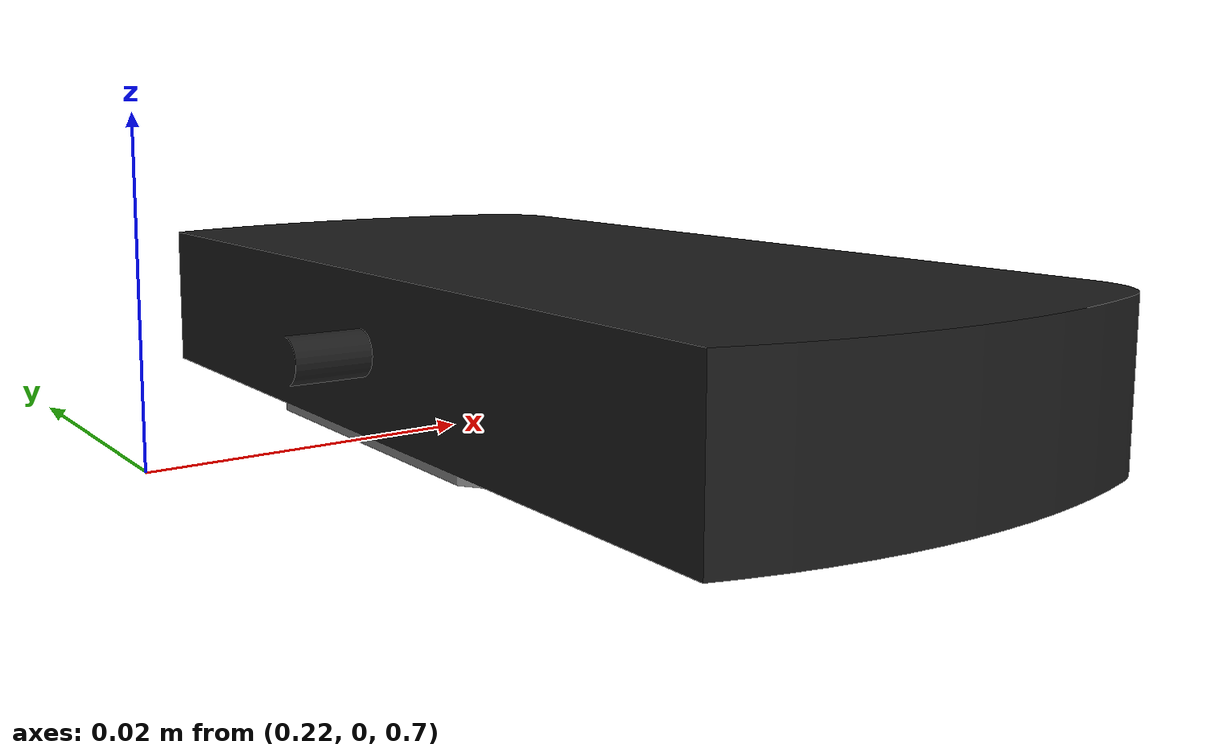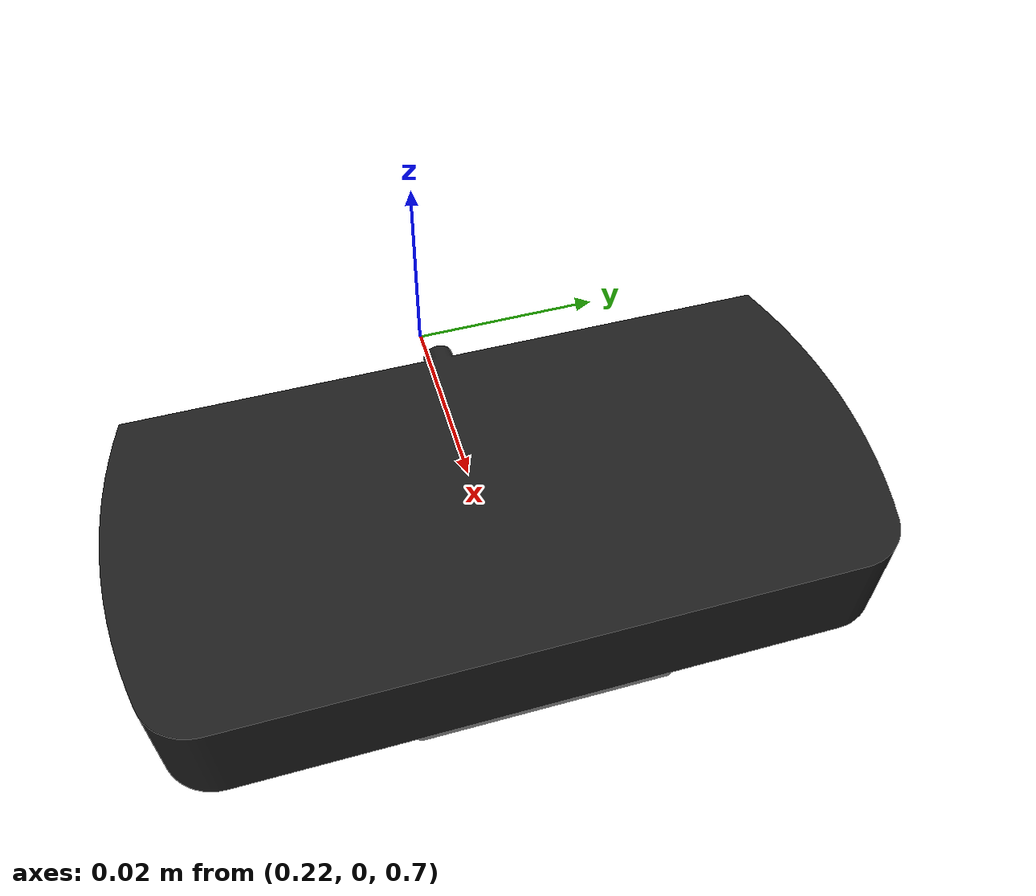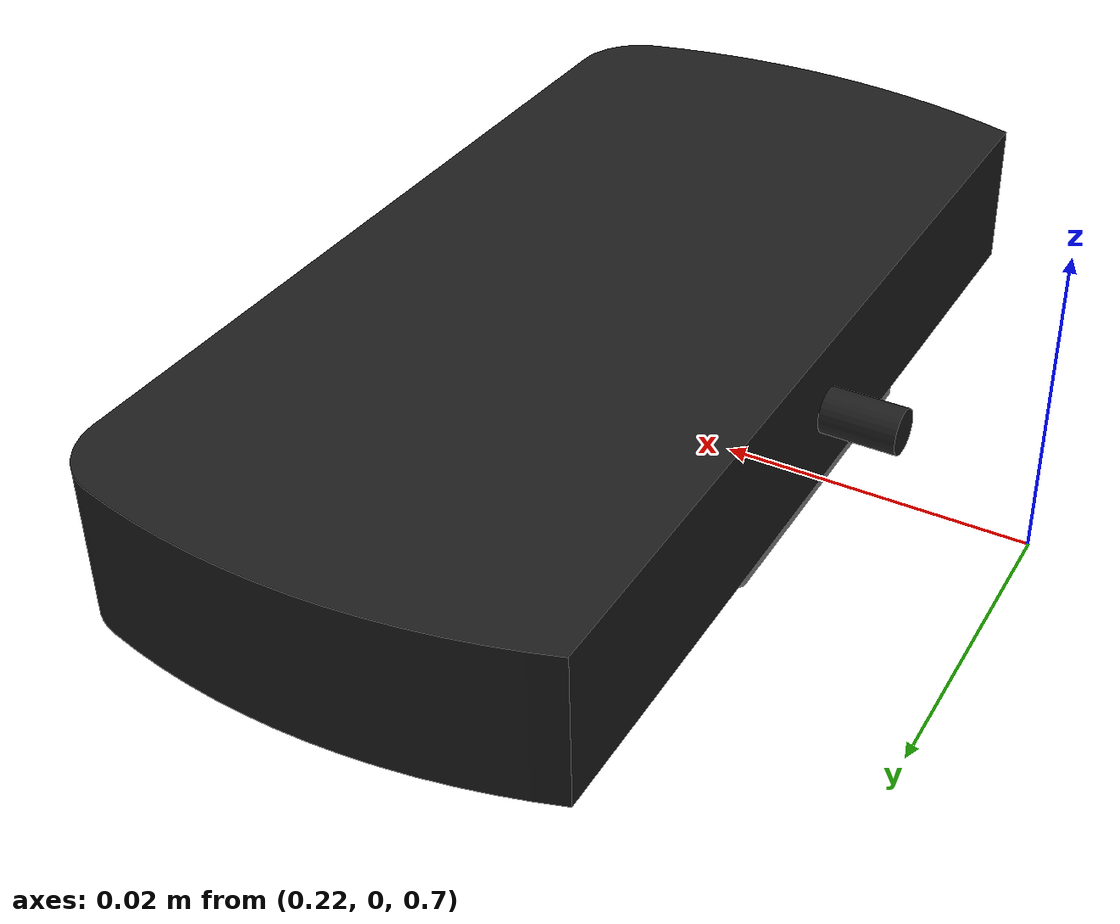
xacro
<?xml version="1.0" encoding="utf-8"?>
<robot xmlns:xacro="https://www.ros.org/wiki/xacro" name="arm">
  <xacro:property name="PI" value="3.14159274"/>
  <xacro:include filename="$(find arm_description)/control/arm_ros2_control.xacro" />
  <xacro:include filename="$(find arm_description)/model/camera/camera.xacro"/>

  <xacro:camera_v0 parent="world">
    <origin xyz="0.25 0 0.7" rpy="0 ${PI/2} 0"/>
  </xacro:camera_v0>
  <xacro:camera_gazebo_v0/>

  <link name="world"/>

  <xacro:arm_ros2_control/>
</robot>

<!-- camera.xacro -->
<robot name="delirobo" xmlns:xacro="http://ros.org/wiki/xacro">

  <xacro:include filename="$(find arm_description)/model/camera/camera.gazebo"/>

  <xacro:macro name="camera_v0" params="parent *joint_origin">
	<joint name="camera_joint" type="fixed">
	  <xacro:insert_block name="joint_origin"/>
	  <parent link="${parent}"/>
	  <child link="camera_link"/>
	</joint>

	<link name="camera_link">
	  <visual>
		<geometry>
			<mesh filename="package://arm_description/model/meshes/camera/camera.dae"/>
		</geometry>
	  </visual>
	  <collision>
		<geometry>
			<mesh filename="package://arm_description/model/meshes/camera/camera.stl"/>
		</geometry>
	  </collision>
	  <inertial>
		<origin xyz="0 0 0"/>
		<mass value="0.1"/>
		<inertia ixx="0.00001" ixy="0" ixz="0" iyy="0.00001" iyz="0" izz="0.00001" />
	  </inertial>
	</link>
  </xacro:macro>

</robot>
